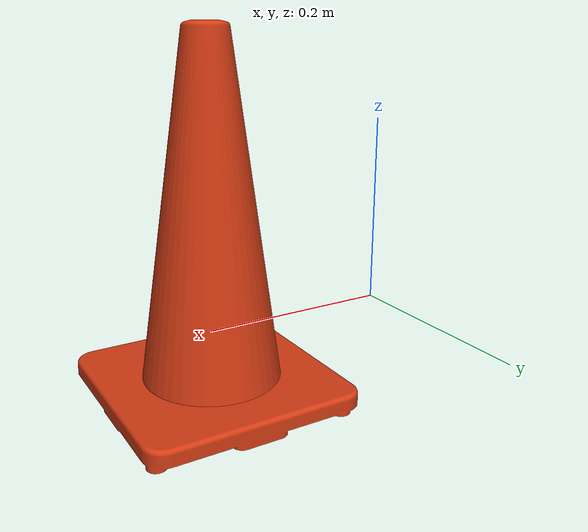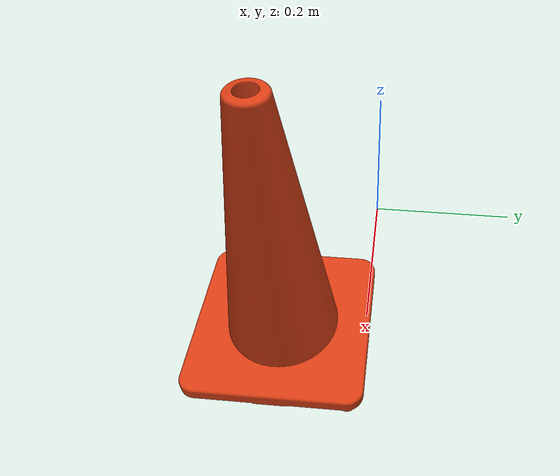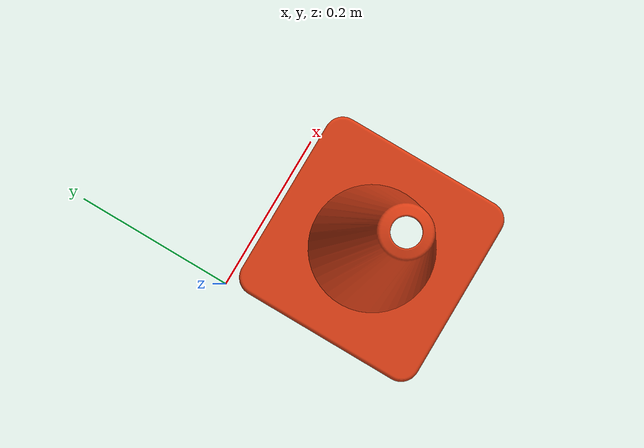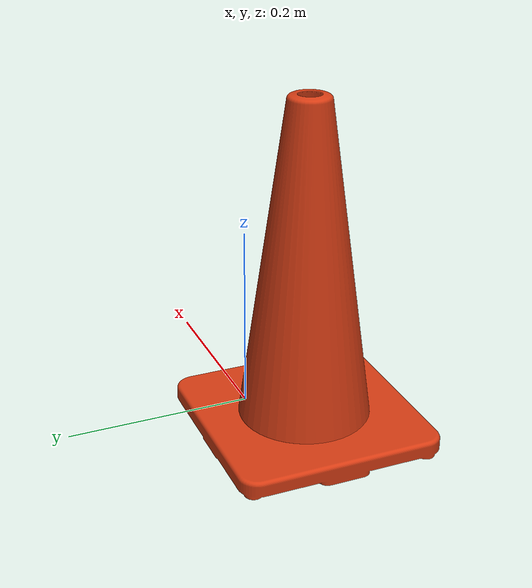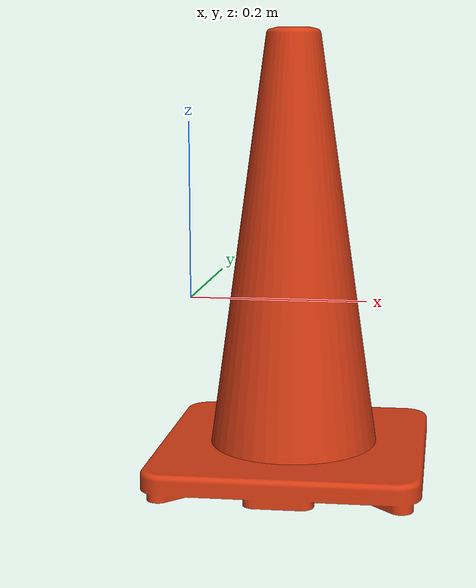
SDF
<?xml version="1.0" ?>
<sdf version="1.6">
  <model name="big_cone">
    <static>true</static>
    <link name="body">
      <visual name="visual">
        <pose>0 0 -0.15 1.5708 0 0</pose>
        <geometry>
          <mesh>
            <uri>model://big_cone/meshes/450mm_Road_Cone_Orange.stl</uri>
            <scale>0.001 0.001 0.001</scale>
          </mesh>
        </geometry>
        <material>
              <!-- Vivid big: -->
          <ambient>0.75 0.22 0.08 1</ambient>
          <diffuse>0.85 0.24 0.08 1</diffuse>
          <specular>0.25 0.13 0.04 1</specular>
          <emissive>0.0 0.0 0.0 1</emissive>

        </material>
      </visual>
      <collision name="collision">
        <pose>0 0 0 1.5708 0 0</pose>
        <geometry>
          <mesh>
            <uri>model://big_cone/meshes/450mm_Road_Cone_Orange.stl</uri>
            <scale>0.001 0.001 0.001</scale>
          </mesh>
        </geometry>
      </collision>
    </link>
  </model>
</sdf>
